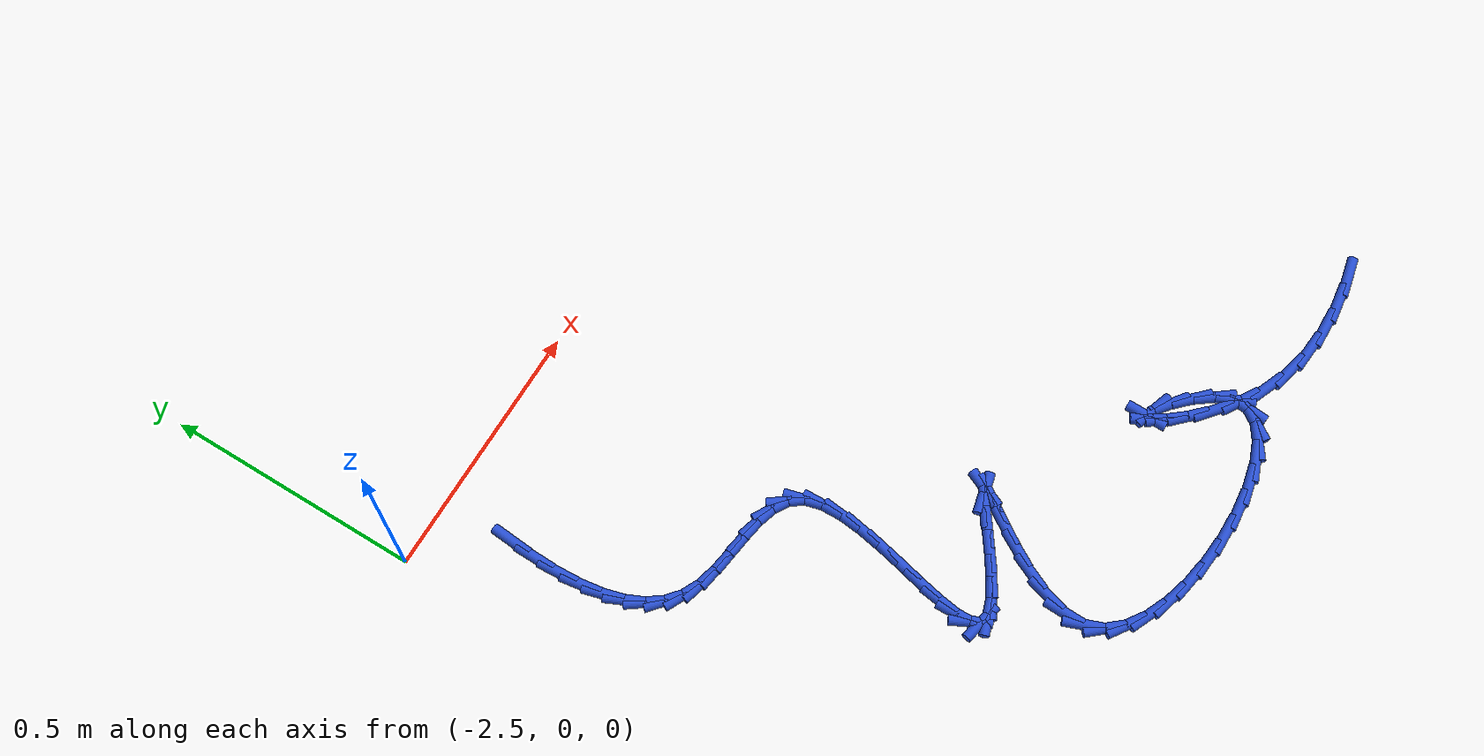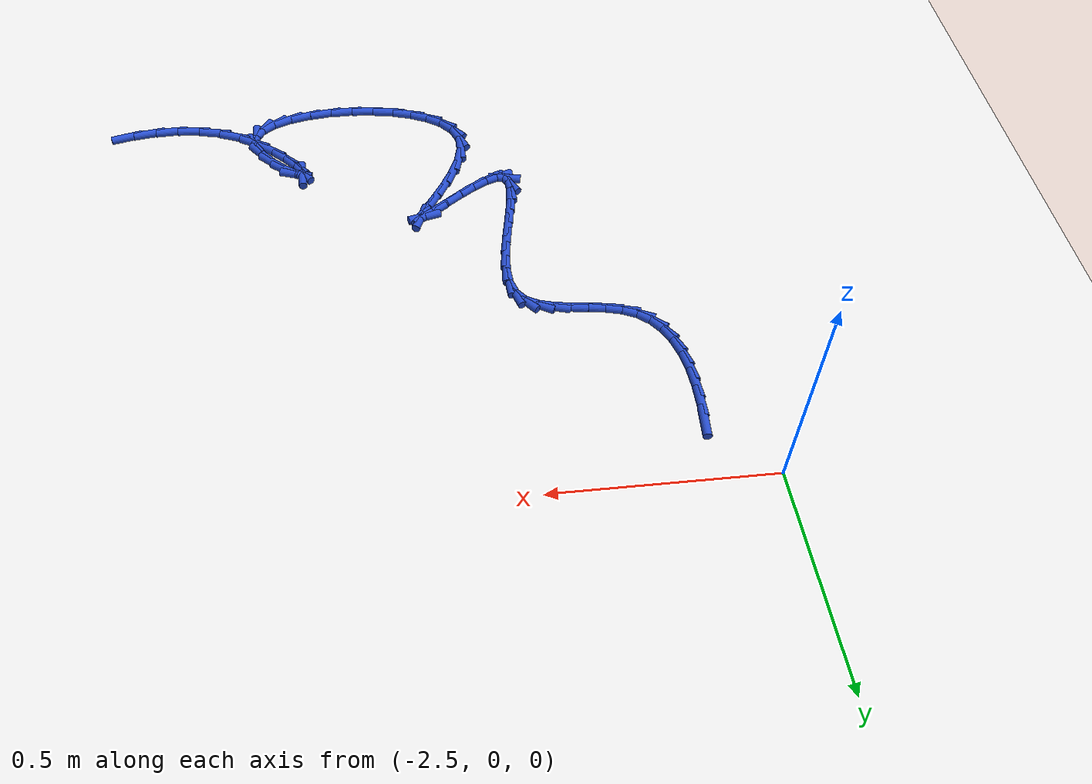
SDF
<sdf version="1.6">
 <world name="default">
  <model name="ground_plane">
   <static>1</static>
   <link name="link">
    <collision name="collision">
     <geometry><plane><normal>0 0 1</normal><size>100 100</size></plane></geometry>
     <surface><friction><ode><mu>100</mu><mu2>50</mu2></ode></friction></surface>
    </collision>
    <visual name="visual">
     <cast_shadows>0</cast_shadows>
     <geometry><plane><normal>0 0 1</normal><size>100 100</size></plane></geometry>
     <material>
      <script><uri>file://media/materials/scripts/gazebo.material</uri><name>Gazebo/WhiteGlow</name></script>
     </material>
    </visual>
   </link>
  </model>
  <model name="line">
   <link name="link_142">
    <pose>-2.367534722023718 -0.14222175634480727 0.01 0 1.57 1.4927262923827602</pose>
    <collision name="collision">
     <geometry><cylinder><radius>0.01</radius><length>0.08</length></cylinder></geometry>
    </collision>
    <visual name="visual">
     <material>
      <script><name>Gazebo/Blue</name><uri>file://media/materials/scripts/gazebo.material</uri></script>
     </material>
     <geometry><cylinder><radius>0.01</radius><length>0.08</length></cylinder></geometry>
    </visual>
   </link>
   <link name="link_143">
    <pose>-2.371664394581402 -0.19501126970334132 0.01 0 1.57 1.551394958650341</pose>
    <collision name="collision">
     <geometry><cylinder><radius>0.01</radius><length>0.08</length></cylinder></geometry>
    </collision>
    <visual name="visual">
     <material>
      <script><name>Gazebo/Blue</name><uri>file://media/materials/scripts/gazebo.material</uri></script>
     </material>
     <geometry><cylinder><radius>0.01</radius><length>0.08</length></cylinder></geometry>
    </visual>
   </link>
   <link name="link_144">
    <pose>-2.3726384613113045 -0.24521105470943155 0.01 0 1.57 -1.5160883344222762</pose>
    <collision name="collision">
     <geometry><cylinder><radius>0.01</radius><length>0.08</length></cylinder></geometry>
    </collision>
    <visual name="visual">
     <material>
      <script><name>Gazebo/Blue</name><uri>file://media/materials/scripts/gazebo.material</uri></script>
     </material>
     <geometry><cylinder><radius>0.01</radius><length>0.08</length></cylinder></geometry>
    </visual>
   </link>
   <link name="link_145">
    <pose>-2.370064036233079 -0.2922216662582472 0.01 0 1.57 -1.4211709859507027</pose>
    <collision name="collision">
     <geometry><cylinder><radius>0.01</radius><length>0.08</length></cylinder></geometry>
    </collision>
    <visual name="visual">
     <material>
      <script><name>Gazebo/Blue</name><uri>file://media/materials/scripts/gazebo.material</uri></script>
     </material>
     <geometry><cylinder><radius>0.01</radius><length>0.08</length></cylinder></geometry>
    </visual>
   </link>
   <link name="link_146">
    <pose>-2.3635482333663784 -0.33544365924495745 0.01 0 1.57 -1.2983472721769436</pose>
    <collision name="collision">
     <geometry><cylinder><radius>0.01</radius><length>0.08</length></cylinder></geometry>
    </collision>
    <visual name="visual">
     <material>
      <script><name>Gazebo/Blue</name><uri>file://media/materials/scripts/gazebo.material</uri></script>
     </material>
     <geometry><cylinder><radius>0.01</radius><length>0.08</length></cylinder></geometry>
    </visual>
   </link>
   <link name="link_147">
    <pose>-2.3526981667308577 -0.3742775885647318 0.01 0 1.57 -1.1394658630683658</pose>
    <collision name="collision">
     <geometry><cylinder><radius>0.01</radius><length>0.08</length></cylinder></geometry>
    </collision>
    <visual name="visual">
     <material>
      <script><name>Gazebo/Blue</name><uri>file://media/materials/scripts/gazebo.material</uri></script>
     </material>
     <geometry><cylinder><radius>0.01</radius><length>0.08</length></cylinder></geometry>
    </visual>
   </link>
   <link name="link_148">
    <pose>-2.337120950346171 -0.4081240091127395 0.01 0 1.57 -0.9386542671441666</pose>
    <collision name="collision">
     <geometry><cylinder><radius>0.01</radius><length>0.08</length></cylinder></geometry>
    </collision>
    <visual name="visual">
     <material>
      <script><name>Gazebo/Blue</name><uri>file://media/materials/scripts/gazebo.material</uri></script>
     </material>
     <geometry><cylinder><radius>0.01</radius><length>0.08</length></cylinder></geometry>
    </visual>
   </link>
   <link name="link_149">
    <pose>-2.3164236982319717 -0.43638347578415004 0.01 0 1.57 -0.6999228345357831</pose>
    <collision name="collision">
     <geometry><cylinder><radius>0.01</radius><length>0.08</length></cylinder></geometry>
    </collision>
    <visual name="visual">
     <material>
      <script><name>Gazebo/Blue</name><uri>file://media/materials/scripts/gazebo.material</uri></script>
     </material>
     <geometry><cylinder><radius>0.01</radius><length>0.08</length></cylinder></geometry>
    </visual>
   </link>
   <link name="link_150">
    <pose>-2.2902135244079136 -0.45845654347413267 0.01 0 1.57 -0.4469127269396857</pose>
    <collision name="collision">
     <geometry><cylinder><radius>0.01</radius><length>0.08</length></cylinder></geometry>
    </collision>
    <visual name="visual">
     <material>
      <script><name>Gazebo/Blue</name><uri>file://media/materials/scripts/gazebo.material</uri></script>
     </material>
     <geometry><cylinder><radius>0.01</radius><length>0.08</length></cylinder></geometry>
    </visual>
   </link>
   <link name="link_151">
    <pose>-2.2581632104356517 -0.4738167545006786 0.01 0 1.57 -0.2543051182490532</pose>
    <collision name="collision">
     <geometry><cylinder><radius>0.01</radius><length>0.08</length></cylinder></geometry>
    </collision>
    <visual name="visual">
     <material>
      <script><name>Gazebo/Blue</name><uri>file://media/materials/scripts/gazebo.material</uri></script>
     </material>
     <geometry><cylinder><radius>0.01</radius><length>0.08</length></cylinder></geometry>
    </visual>
   </link>
   <link name="link_152">
    <pose>-2.2212676379859473 -0.4834071241776403 0.01 0 1.57 -0.15376861565338065</pose>
    <collision name="collision">
     <geometry><cylinder><radius>0.01</radius><length>0.08</length></cylinder></geometry>
    </collision>
    <visual name="visual">
     <material>
      <script><name>Gazebo/Blue</name><uri>file://media/materials/scripts/gazebo.material</uri></script>
     </material>
     <geometry><cylinder><radius>0.01</radius><length>0.08</length></cylinder></geometry>
    </visual>
   </link>
   <link name="link_153">
    <pose>-2.181746959755795 -0.48953251831209127 0.01 0 1.57 -0.12513975057478421</pose>
    <collision name="collision">
     <geometry><cylinder><radius>0.01</radius><length>0.08</length></cylinder></geometry>
    </collision>
    <visual name="visual">
     <material>
      <script><name>Gazebo/Blue</name><uri>file://media/materials/scripts/gazebo.material</uri></script>
     </material>
     <geometry><cylinder><radius>0.01</radius><length>0.08</length></cylinder></geometry>
    </visual>
   </link>
   <link name="link_154">
    <pose>-2.1418675950410595 -0.49454922659132006 0.01 0 1.57 -0.16350079786242294</pose>
    <collision name="collision">
     <geometry><cylinder><radius>0.01</radius><length>0.08</length></cylinder></geometry>
    </collision>
    <visual name="visual">
     <material>
      <script><name>Gazebo/Blue</name><uri>file://media/materials/scripts/gazebo.material</uri></script>
     </material>
     <geometry><cylinder><radius>0.01</radius><length>0.08</length></cylinder></geometry>
    </visual>
   </link>
   <link name="link_155">
    <pose>-2.1038959631376044 -0.500813538702616 0.01 0 1.57 -0.28408332944326004</pose>
    <collision name="collision">
     <geometry><cylinder><radius>0.01</radius><length>0.08</length></cylinder></geometry>
    </collision>
    <visual name="visual">
     <material>
      <script><name>Gazebo/Blue</name><uri>file://media/materials/scripts/gazebo.material</uri></script>
     </material>
     <geometry><cylinder><radius>0.01</radius><length>0.08</length></cylinder></geometry>
    </visual>
   </link>
   <link name="link_156">
    <pose>-2.0700984833412934 -0.5106817443332683 0.01 0 1.57 -0.5245268479560343</pose>
    <collision name="collision">
     <geometry><cylinder><radius>0.01</radius><length>0.08</length></cylinder></geometry>
    </collision>
    <visual name="visual">
     <material>
      <script><name>Gazebo/Blue</name><uri>file://media/materials/scripts/gazebo.material</uri></script>
     </material>
     <geometry><cylinder><radius>0.01</radius><length>0.08</length></cylinder></geometry>
    </visual>
   </link>
   <link name="link_157">
    <pose>-2.042741574947991 -0.5265101331705657 0.01 0 1.57 -0.912512303107589</pose>
    <collision name="collision">
     <geometry><cylinder><radius>0.01</radius><length>0.08</length></cylinder></geometry>
    </collision>
    <visual name="visual">
     <material>
      <script><name>Gazebo/Blue</name><uri>file://media/materials/scripts/gazebo.material</uri></script>
     </material>
     <geometry><cylinder><radius>0.01</radius><length>0.08</length></cylinder></geometry>
    </visual>
   </link>
   <link name="link_158">
    <pose>-2.024079331292781 -0.5506415441420299 0.01 0 1.57 -1.304756937353869</pose>
    <collision name="collision">
     <geometry><cylinder><radius>0.01</radius><length>0.08</length></cylinder></geometry>
    </collision>
    <visual name="visual">
     <material>
      <script><name>Gazebo/Blue</name><uri>file://media/materials/scripts/gazebo.material</uri></script>
     </material>
     <geometry><cylinder><radius>0.01</radius><length>0.08</length></cylinder></geometry>
    </visual>
   </link>
   <link name="link_159">
    <pose>-2.015006722506168 -0.5839356669061756 0.01 0 1.57 -1.5421871909011355</pose>
    <collision name="collision">
     <geometry><cylinder><radius>0.01</radius><length>0.08</length></cylinder></geometry>
    </collision>
    <visual name="visual">
     <material>
      <script><name>Gazebo/Blue</name><uri>file://media/materials/scripts/gazebo.material</uri></script>
     </material>
     <geometry><cylinder><radius>0.01</radius><length>0.08</length></cylinder></geometry>
    </visual>
   </link>
   <link name="link_160">
    <pose>-2.013847433022036 -0.6244462641176255 0.01 0 1.57 1.465801101787795</pose>
    <collision name="collision">
     <geometry><cylinder><radius>0.01</radius><length>0.08</length></cylinder></geometry>
    </collision>
    <visual name="visual">
     <material>
      <script><name>Gazebo/Blue</name><uri>file://media/materials/scripts/gazebo.material</uri></script>
     </material>
     <geometry><cylinder><radius>0.01</radius><length>0.08</length></cylinder></geometry>
    </visual>
   </link>
   <link name="link_161">
    <pose>-2.0186390415393807 -0.6699148842696008 0.01 0 1.57 1.3904960794381915</pose>
    <collision name="collision">
     <geometry><cylinder><radius>0.01</radius><length>0.08</length></cylinder></geometry>
    </collision>
    <visual name="visual">
     <material>
      <script><name>Gazebo/Blue</name><uri>file://media/materials/scripts/gazebo.material</uri></script>
     </material>
     <geometry><cylinder><radius>0.01</radius><length>0.08</length></cylinder></geometry>
    </visual>
   </link>
   <link name="link_162">
    <pose>-2.0274191267571977 -0.7180830758553222 0.01 0 1.57 1.3520475664086893</pose>
    <collision name="collision">
     <geometry><cylinder><radius>0.01</radius><length>0.08</length></cylinder></geometry>
    </collision>
    <visual name="visual">
     <material>
      <script><name>Gazebo/Blue</name><uri>file://media/materials/scripts/gazebo.material</uri></script>
     </material>
     <geometry><cylinder><radius>0.01</radius><length>0.08</length></cylinder></geometry>
    </visual>
   </link>
   <link name="link_163">
    <pose>-2.038225267374481 -0.7666923873680103 0.01 0 1.57 1.342544641332965</pose>
    <collision name="collision">
     <geometry><cylinder><radius>0.01</radius><length>0.08</length></cylinder></geometry>
    </collision>
    <visual name="visual">
     <material>
      <script><name>Gazebo/Blue</name><uri>file://media/materials/scripts/gazebo.material</uri></script>
     </material>
     <geometry><cylinder><radius>0.01</radius><length>0.08</length></cylinder></geometry>
    </visual>
   </link>
   <link name="link_164">
    <pose>-2.049095042090226 -0.8134843673008862 0.01 0 1.57 1.3637909896577558</pose>
    <collision name="collision">
     <geometry><cylinder><radius>0.01</radius><length>0.08</length></cylinder></geometry>
    </collision>
    <visual name="visual">
     <material>
      <script><name>Gazebo/Blue</name><uri>file://media/materials/scripts/gazebo.material</uri></script>
     </material>
     <geometry><cylinder><radius>0.01</radius><length>0.08</length></cylinder></geometry>
    </visual>
   </link>
   <link name="link_165">
    <pose>-2.058066029603428 -0.8562005641471706 0.01 0 1.57 1.431260884879268</pose>
    <collision name="collision">
     <geometry><cylinder><radius>0.01</radius><length>0.08</length></cylinder></geometry>
    </collision>
    <visual name="visual">
     <material>
      <script><name>Gazebo/Blue</name><uri>file://media/materials/scripts/gazebo.material</uri></script>
     </material>
     <geometry><cylinder><radius>0.01</radius><length>0.08</length></cylinder></geometry>
    </visual>
   </link>
   <link name="link_166">
    <pose>-2.063175808613082 -0.8925825264000844 0.01 0 1.57 -1.5451139795421869</pose>
    <collision name="collision">
     <geometry><cylinder><radius>0.01</radius><length>0.08</length></cylinder></geometry>
    </collision>
    <visual name="visual">
     <material>
      <script><name>Gazebo/Blue</name><uri>file://media/materials/scripts/gazebo.material</uri></script>
     </material>
     <geometry><cylinder><radius>0.01</radius><length>0.08</length></cylinder></geometry>
    </visual>
   </link>
   <link name="link_167">
    <pose>-2.0624619578181833 -0.9203718025528488 0.01 0 1.57 -1.1056935320502097</pose>
    <collision name="collision">
     <geometry><cylinder><radius>0.01</radius><length>0.08</length></cylinder></geometry>
    </collision>
    <visual name="visual">
     <material>
      <script><name>Gazebo/Blue</name><uri>file://media/materials/scripts/gazebo.material</uri></script>
     </material>
     <geometry><cylinder><radius>0.01</radius><length>0.08</length></cylinder></geometry>
    </visual>
   </link>
   <link name="link_168">
    <pose>-2.0539620559177276 -0.9373099410986839 0.01 0 1.57 -0.2068946007845611</pose>
    <collision name="collision">
     <geometry><cylinder><radius>0.01</radius><length>0.08</length></cylinder></geometry>
    </collision>
    <visual name="visual">
     <material>
      <script><name>Gazebo/Blue</name><uri>file://media/materials/scripts/gazebo.material</uri></script>
     </material>
     <geometry><cylinder><radius>0.01</radius><length>0.08</length></cylinder></geometry>
    </visual>
   </link>
   <link name="link_169">
    <pose>-2.035714995976048 -0.9411399643982902 0.01 0 1.57 0.3362952146512855</pose>
    <collision name="collision">
     <geometry><cylinder><radius>0.01</radius><length>0.08</length></cylinder></geometry>
    </collision>
    <visual name="visual">
     <material>
      <script><name>Gazebo/Blue</name><uri>file://media/materials/scripts/gazebo.material</uri></script>
     </material>
     <geometry><cylinder><radius>0.01</radius><length>0.08</length></cylinder></geometry>
    </visual>
   </link>
   <link name="link_170">
    <pose>-2.0071376151215725 -0.9311500564846302 0.01 0 1.57 0.5140883160468618</pose>
    <collision name="collision">
     <geometry><cylinder><radius>0.01</radius><length>0.08</length></cylinder></geometry>
    </collision>
    <visual name="visual">
     <material>
      <script><name>Gazebo/Blue</name><uri>file://media/materials/scripts/gazebo.material</uri></script>
     </material>
     <geometry><cylinder><radius>0.01</radius><length>0.08</length></cylinder></geometry>
    </visual>
   </link>
   <link name="link_171">
    <pose>-1.971634506163452 -0.911100083076989 0.01 0 1.57 0.5881455450969074</pose>
    <collision name="collision">
     <geometry><cylinder><radius>0.01</radius><length>0.08</length></cylinder></geometry>
    </collision>
    <visual name="visual">
     <material>
      <script><name>Gazebo/Blue</name><uri>file://media/materials/scripts/gazebo.material</uri></script>
     </material>
     <geometry><cylinder><radius>0.01</radius><length>0.08</length></cylinder></geometry>
    </visual>
   </link>
   <link name="link_172">
    <pose>-1.933327460318377 -0.8855541424608474 0.01 0 1.57 0.6212683855946957</pose>
    <collision name="collision">
     <geometry><cylinder><radius>0.01</radius><length>0.08</length></cylinder></geometry>
    </collision>
    <visual name="visual">
     <material>
      <script><name>Gazebo/Blue</name><uri>file://media/materials/scripts/gazebo.material</uri></script>
     </material>
     <geometry><cylinder><radius>0.01</radius><length>0.08</length></cylinder></geometry>
    </visual>
   </link>
   <link name="link_173">
    <pose>-1.8963382688030381 -0.8590763329216857 0.01 0 1.57 0.6267295361126305</pose>
    <collision name="collision">
     <geometry><cylinder><radius>0.01</radius><length>0.08</length></cylinder></geometry>
    </collision>
    <visual name="visual">
     <material>
      <script><name>Gazebo/Blue</name><uri>file://media/materials/scripts/gazebo.material</uri></script>
     </material>
     <geometry><cylinder><radius>0.01</radius><length>0.08</length></cylinder></geometry>
    </visual>
   </link>
   <link name="link_174">
    <pose>-1.8647887228341264 -0.836230752744984 0.01 0 1.57 0.5877038424918989</pose>
    <collision name="collision">
     <geometry><cylinder><radius>0.01</radius><length>0.08</length></cylinder></geometry>
    </collision>
    <visual name="visual">
     <material>
      <script><name>Gazebo/Blue</name><uri>file://media/materials/scripts/gazebo.material</uri></script>
     </material>
     <geometry><cylinder><radius>0.01</radius><length>0.08</length></cylinder></geometry>
    </visual>
   </link>
   <link name="link_175">
    <pose>-1.842800613628333 -0.8215815002162227 0.01 0 1.57 0.2358585604706953</pose>
    <collision name="collision">
     <geometry><cylinder><radius>0.01</radius><length>0.08</length></cylinder></geometry>
    </collision>
    <visual name="visual">
     <material>
      <script><name>Gazebo/Blue</name><uri>file://media/materials/scripts/gazebo.material</uri></script>
     </material>
     <geometry><cylinder><radius>0.01</radius><length>0.08</length></cylinder></geometry>
    </visual>
   </link>
   <link name="link_176">
    <pose>-1.8343338172458328 -0.8195466609281843 0.01 0 1.57 1.1439854885659801</pose>
    <collision name="collision">
     <geometry><cylinder><radius>0.01</radius><length>0.08</length></cylinder></geometry>
    </collision>
    <visual name="visual">
     <material>
      <script><name>Gazebo/Blue</name><uri>file://media/materials/scripts/gazebo.material</uri></script>
     </material>
     <geometry><cylinder><radius>0.01</radius><length>0.08</length></cylinder></geometry>
    </visual>
   </link>
   <link name="link_177">
    <pose>-1.8396289973896525 -0.8311903897937349 0.01 0 1.57 0.9760718624675299</pose>
    <collision name="collision">
     <geometry><cylinder><radius>0.01</radius><length>0.08</length></cylinder></geometry>
    </collision>
    <visual name="visual">
     <material>
      <script><name>Gazebo/Blue</name><uri>file://media/materials/scripts/gazebo.material</uri></script>
     </material>
     <geometry><cylinder><radius>0.01</radius><length>0.08</length></cylinder></geometry>
    </visual>
   </link>
   <link name="link_178">
    <pose>-1.855210290224737 -0.8542253321759377 0.01 0 1.57 0.9635427401177101</pose>
    <collision name="collision">
     <geometry><cylinder><radius>0.01</radius><length>0.08</length></cylinder></geometry>
    </collision>
    <visual name="visual">
     <material>
      <script><name>Gazebo/Blue</name><uri>file://media/materials/scripts/gazebo.material</uri></script>
     </material>
     <geometry><cylinder><radius>0.01</radius><length>0.08</length></cylinder></geometry>
    </visual>
   </link>
   <link name="link_179">
    <pose>-1.8774404537234142 -0.8862186049712573 0.01 0 1.57 0.9906956656434615</pose>
    <collision name="collision">
     <geometry><cylinder><radius>0.01</radius><length>0.08</length></cylinder></geometry>
    </collision>
    <visual name="visual">
     <material>
      <script><name>Gazebo/Blue</name><uri>file://media/materials/scripts/gazebo.material</uri></script>
     </material>
     <geometry><cylinder><radius>0.01</radius><length>0.08</length></cylinder></geometry>
    </visual>
   </link>
   <link name="link_180">
    <pose>-1.9026822458580122 -0.9247373250761587 0.01 0 1.57 1.0469416308467774</pose>
    <collision name="collision">
     <geometry><cylinder><radius>0.01</radius><length>0.08</length></cylinder></geometry>
    </collision>
    <visual name="visual">
     <material>
      <script><name>Gazebo/Blue</name><uri>file://media/materials/scripts/gazebo.material</uri></script>
     </material>
     <geometry><cylinder><radius>0.01</radius><length>0.08</length></cylinder></geometry>
    </visual>
   </link>
   <link name="link_181">
    <pose>-1.9272984246008578 -0.9673486093871065 0.01 0 1.57 1.1398686625085255</pose>
    <collision name="collision">
     <geometry><cylinder><radius>0.01</radius><length>0.08</length></cylinder></geometry>
    </collision>
    <visual name="visual">
     <material>
      <script><name>Gazebo/Blue</name><uri>file://media/materials/scripts/gazebo.material</uri></script>
     </material>
     <geometry><cylinder><radius>0.01</radius><length>0.08</length></cylinder></geometry>
    </visual>
   </link>
   <link name="link_182">
    <pose>-1.9476517479242796 -1.0116195748005659 0.01 0 1.57 1.2919591473286784</pose>
    <collision name="collision">
     <geometry><cylinder><radius>0.01</radius><length>0.08</length></cylinder></geometry>
    </collision>
    <visual name="visual">
     <material>
      <script><name>Gazebo/Blue</name><uri>file://media/materials/scripts/gazebo.material</uri></script>
     </material>
     <geometry><cylinder><radius>0.01</radius><length>0.08</length></cylinder></geometry>
    </visual>
   </link>
   <link name="link_183">
    <pose>-1.9601049738006053 -1.0551173382130015 0.01 0 1.57 1.5480656570225104</pose>
    <collision name="collision">
     <geometry><cylinder><radius>0.01</radius><length>0.08</length></cylinder></geometry>
    </collision>
    <visual name="visual">
     <material>
      <script><name>Gazebo/Blue</name><uri>file://media/materials/scripts/gazebo.material</uri></script>
     </material>
     <geometry><cylinder><radius>0.01</radius><length>0.08</length></cylinder></geometry>
    </visual>
   </link>
   <link name="link_184">
    <pose>-1.9610209896610031 -1.0954090718378189 0.01 0 1.57 -1.2134356595978673</pose>
    <collision name="collision">
     <geometry><cylinder><radius>0.01</radius><length>0.08</length></cylinder></geometry>
    </collision>
    <visual name="visual">
     <material>
      <script><name>Gazebo/Blue</name><uri>file://media/materials/scripts/gazebo.material</uri></script>
     </material>
     <geometry><cylinder><radius>0.01</radius><length>0.08</length></cylinder></geometry>
    </visual>
   </link>
   <link name="link_185">
    <pose>-1.9479003505185049 -1.1305480660319904 0.01 0 1.57 -0.8566854456638373</pose>
    <collision name="collision">
     <geometry><cylinder><radius>0.01</radius><length>0.08</length></cylinder></geometry>
    </collision>
    <visual name="visual">
     <material>
      <script><name>Gazebo/Blue</name><uri>file://media/materials/scripts/gazebo.material</uri></script>
     </material>
     <geometry><cylinder><radius>0.01</radius><length>0.08</length></cylinder></geometry>
    </visual>
   </link>
   <link name="link_186">
    <pose>-1.922151271971977 -1.1602573297415928 0.01 0 1.57 -0.5932237876398642</pose>
    <collision name="collision">
     <geometry><cylinder><radius>0.01</radius><length>0.08</length></cylinder></geometry>
    </collision>
    <visual name="visual">
     <material>
      <script><name>Gazebo/Blue</name><uri>file://media/materials/scripts/gazebo.material</uri></script>
     </material>
     <geometry><cylinder><radius>0.01</radius><length>0.08</length></cylinder></geometry>
    </visual>
   </link>
   <link name="link_187">
    <pose>-1.8860203025705142 -1.1846180862663065 0.01 0 1.57 -0.4072215817042992</pose>
    <collision name="collision">
     <geometry><cylinder><radius>0.01</radius><length>0.08</length></cylinder></geometry>
    </collision>
    <visual name="visual">
     <material>
      <script><name>Gazebo/Blue</name><uri>file://media/materials/scripts/gazebo.material</uri></script>
     </material>
     <geometry><cylinder><radius>0.01</radius><length>0.08</length></cylinder></geometry>
    </visual>
   </link>
   <link name="link_188">
    <pose>-1.8417539908632057 -1.2037115589058112 0.01 0 1.57 -0.270492158215608</pose>
    <collision name="collision">
     <geometry><cylinder><radius>0.01</radius><length>0.08</length></cylinder></geometry>
    </collision>
    <visual name="visual">
     <material>
      <script><name>Gazebo/Blue</name><uri>file://media/materials/scripts/gazebo.material</uri></script>
     </material>
     <geometry><cylinder><radius>0.01</radius><length>0.08</length></cylinder></geometry>
    </visual>
   </link>
   <link name="link_189">
    <pose>-1.7915988853991458 -1.2176189709597869 0.01 0 1.57 -0.162187463181037</pose>
    <collision name="collision">
     <geometry><cylinder><radius>0.01</radius><length>0.08</length></cylinder></geometry>
    </collision>
    <visual name="visual">
     <material>
      <script><name>Gazebo/Blue</name><uri>file://media/materials/scripts/gazebo.material</uri></script>
     </material>
     <geometry><cylinder><radius>0.01</radius><length>0.08</length></cylinder></geometry>
    </visual>
   </link>
   <link name="link_190">
    <pose>-1.7378015347274254 -1.2264215457279137 0.01 0 1.57 -0.06836136832205573</pose>
    <collision name="collision">
     <geometry><cylinder><radius>0.01</radius><length>0.08</length></cylinder></geometry>
    </collision>
    <visual name="visual">
     <material>
      <script><name>Gazebo/Blue</name><uri>file://media/materials/scripts/gazebo.material</uri></script>
     </material>
     <geometry><cylinder><radius>0.01</radius><length>0.08</length></cylinder></geometry>
    </visual>
   </link>
   <link name="link_191">
    <pose>-1.682608487397137 -1.230200506509872 0.01 0 1.57 0.021406058177551823</pose>
    <collision name="collision">
     <geometry><cylinder><radius>0.01</radius><length>0.08</length></cylinder></geometry>
    </collision>
    <visual name="visual">
     <material>
      <script><name>Gazebo/Blue</name><uri>file://media/materials/scripts/gazebo.material</uri></script>
     </material>
     <geometry><cylinder><radius>0.01</radius><length>0.08</length></cylinder></geometry>
    </visual>
   </link>
   <link name="link_192">
    <pose>-1.6282662919573725 -1.2290370766053413 0.01 0 1.57 0.11702786234181768</pose>
    <collision name="collision">
     <geometry><cylinder><radius>0.01</radius><length>0.08</length></cylinder></geometry>
    </collision>
    <visual name="visual">
     <material>
      <script><name>Gazebo/Blue</name><uri>file://media/materials/scripts/gazebo.material</uri></script>
     </material>
     <geometry><cylinder><radius>0.01</radius><length>0.08</length></cylinder></geometry>
    </visual>
   </link>
   <link name="link_193">
    <pose>-1.5770214969572243 -1.2230124793140023 0.01 0 1.57 0.23118030468283376</pose>
    <collision name="collision">
     <geometry><cylinder><radius>0.01</radius><length>0.08</length></cylinder></geometry>
    </collision>
    <visual name="visual">
     <material>
      <script><name>Gazebo/Blue</name><uri>file://media/materials/scripts/gazebo.material</uri></script>
     </material>
     <geometry><cylinder><radius>0.01</radius><length>0.08</length></cylinder></geometry>
    </visual>
   </link>
   <link name="link_194">
    <pose>-1.5311206509457849 -1.212207937935535 0.01 0 1.57 0.3845305324991904</pose>
    <collision name="collision">
     <geometry><cylinder><radius>0.01</radius><length>0.08</length></cylinder></geometry>
    </collision>
    <visual name="visual">
     <material>
      <script><name>Gazebo/Blue</name><uri>file://media/materials/scripts/gazebo.material</uri></script>
     </material>
     <geometry><cylinder><radius>0.01</radius><length>0.08</length></cylinder></geometry>
    </visual>
   </link>
   <link name="link_195">
    <pose>-1.492810302472146 -1.1967046757696194 0.01 0 1.57 0.6151774769110303</pose>
    <collision name="collision">
     <geometry><cylinder><radius>0.01</radius><length>0.08</length></cylinder></geometry>
    </collision>
    <visual name="visual">
     <material>
      <script><name>Gazebo/Blue</name><uri>file://media/materials/scripts/gazebo.material</uri></script>
     </material>
     <geometry><cylinder><radius>0.01</radius><length>0.08</length></cylinder></geometry>
    </visual>
   </link>
   <link name="link_196">
    <pose>-1.4643370000853988 -1.1765839161159348 0.01 0 1.57 0.9841515091037739</pose>
    <collision name="collision">
     <geometry><cylinder><radius>0.01</radius><length>0.08</length></cylinder></geometry>
    </collision>
    <visual name="visual">
     <material>
      <script><name>Gazebo/Blue</name><uri>file://media/materials/scripts/gazebo.material</uri></script>
     </material>
     <geometry><cylinder><radius>0.01</radius><length>0.08</length></cylinder></geometry>
    </visual>
   </link>
   <link name="link_197">
    <pose>-1.447947292334637 -1.1519268822741624 0.01 0 1.57 1.5001679666068761</pose>
    <collision name="collision">
     <geometry><cylinder><radius>0.01</radius><length>0.08</length></cylinder></geometry>
    </collision>
    <visual name="visual">
     <material>
      <script><name>Gazebo/Blue</name><uri>file://media/materials/scripts/gazebo.material</uri></script>
     </material>
     <geometry><cylinder><radius>0.01</radius><length>0.08</length></cylinder></geometry>
    </visual>
   </link>
   <link name="link_198">
    <pose>-1.4458877277689526 -1.1228147975439817 0.01 0 1.57 -1.1722069931587018</pose>
    <collision name="collision">
     <geometry><cylinder><radius>0.01</radius><length>0.08</length></cylinder></geometry>
    </collision>
    <visual name="visual">
     <material>
      <script><name>Gazebo/Blue</name><uri>file://media/materials/scripts/gazebo.material</uri></script>
     </material>
     <geometry><cylinder><radius>0.01</radius><length>0.08</length></cylinder></geometry>
    </visual>
   </link>
   <link name="link_199">
    <pose>-1.4598760186103663 -1.0895988190987438 0.01 0 1.57 -0.9194295971472782</pose>
    <collision name="collision">
     <geometry><cylinder><radius>0.01</radius><length>0.08</length></cylinder></geometry>
    </collision>
    <visual name="visual">
     <material>
      <script><name>Gazebo/Blue</name><uri>file://media/materials/scripts/gazebo.material</uri></script>
     </material>
     <geometry><cylinder><radius>0.01</radius><length>0.08</length></cylinder></geometry>
    </visual>
   </link>
   <link name="link_200">
    <pose>-1.4857852828541083 -1.055613359759943 0.01 0 1.57 -0.7769321827403551</pose>
    <collision name="collision">
     <geometry><cylinder><radius>0.01</radius><length>0.08</length></cylinder></geometry>
    </collision>
    <visual name="visual">
     <material>
      <script><name>Gazebo/Blue</name><uri>file://media/materials/scripts/gazebo.material</uri></script>
     </material>
     <geometry><cylinder><radius>0.01</radius><length>0.08</length></cylinder></geometry>
    </visual>
   </link>
   <link name="link_201">
    <pose>-1.515857050849167 -1.0260465032690673 0.01 0 1.57 -0.646314514964658</pose>
    <collision name="collision">
     <geometry><cylinder><radius>0.01</radius><length>0.08</length></cylinder></geometry>
    </collision>
    <visual name="visual">
     <material>
      <script><name>Gazebo/Blue</name><uri>file://media/materials/scripts/gazebo.material</uri></script>
     </material>
     <geometry><cylinder><radius>0.01</radius><length>0.08</length></cylinder></geometry>
    </visual>
   </link>
   <link name="link_202">
    <pose>-1.542278280606049 -1.0061141887208913 0.01 0 1.57 -0.3312779596118483</pose>
    <collision name="collision">
     <geometry><cylinder><radius>0.01</radius><length>0.08</length></cylinder></geometry>
    </collision>
    <visual name="visual">
     <material>
      <script><name>Gazebo/Blue</name><uri>file://media/materials/scripts/gazebo.material</uri></script>
     </material>
     <geometry><cylinder><radius>0.01</radius><length>0.08</length></cylinder></geometry>
    </visual>
   </link>
   <link name="link_203">
    <pose>-1.5573369106891712 -1.000934721890441 0.01 0 1.57 1.570074159566685</pose>
    <collision name="collision">
     <geometry><cylinder><radius>0.01</radius><length>0.08</length></cylinder></geometry>
    </collision>
    <visual name="visual">
     <material>
      <script><name>Gazebo/Blue</name><uri>file://media/materials/scripts/gazebo.material</uri></script>
     </material>
     <geometry><cylinder><radius>0.01</radius><length>0.08</length></cylinder></geometry>
    </visual>
   </link>
   <link name="link_204">
    <pose>-1.5573447109881355 -1.0117359564294255 0.01 0 1.57 -1.039856298189714</pose>
    <collision name="collision">
     <geometry><cylinder><radius>0.01</radius><length>0.08</length></cylinder></geometry>
    </collision>
    <visual name="visual">
     <material>
      <script><name>Gazebo/Blue</name><uri>file://media/materials/scripts/gazebo.material</uri></script>
     </material>
     <geometry><cylinder><radius>0.01</radius><length>0.08</length></cylinder></geometry>
    </visual>
   </link>
   <link name="link_205">
    <pose>-1.54389808848164 -1.0346362804273195 0.01 0 1.57 -0.8895684061264523</pose>
    <collision name="collision">
     <geometry><cylinder><radius>0.01</radius><length>0.08</length></cylinder></geometry>
    </collision>
    <visual name="visual">
     <material>
      <script><name>Gazebo/Blue</name><uri>file://media/materials/scripts/gazebo.material</uri></script>
     </material>
     <geometry><cylinder><radius>0.01</radius><length>0.08</length></cylinder></geometry>
    </visual>
   </link>
   <link name="link_206">
    <pose>-1.5189524791650635 -1.0654069538045994 0.01 0 1.57 -0.7842824041462538</pose>
    <collision name="collision">
     <geometry><cylinder><radius>0.01</radius><length>0.08</length></cylinder></geometry>
    </collision>
    <visual name="visual">
     <material>
      <script><name>Gazebo/Blue</name><uri>file://media/materials/scripts/gazebo.material</uri></script>
     </material>
     <geometry><cylinder><radius>0.01</radius><length>0.08</length></cylinder></geometry>
    </visual>
   </link>
   <link name="link_207">
    <pose>-1.4844633190337853 -1.0998192364817414 0.01 0 1.57 -0.6771033631634111</pose>
    <collision name="collision">
     <geometry><cylinder><radius>0.01</radius><length>0.08</length></cylinder></geometry>
    </collision>
    <visual name="visual">
     <material>
      <script><name>Gazebo/Blue</name><uri>file://media/materials/scripts/gazebo.material</uri></script>
     </material>
     <geometry><cylinder><radius>0.01</radius><length>0.08</length></cylinder></geometry>
    </visual>
   </link>
   <link name="link_208">
    <pose>-1.4423860440831828 -1.1336443883792218 0.01 0 1.57 -0.5463060282760673</pose>
    <collision name="collision">
     <geometry><cylinder><radius>0.01</radius><length>0.08</length></cylinder></geometry>
    </collision>
    <visual name="visual">
     <material>
      <script><name>Gazebo/Blue</name><uri>file://media/materials/scripts/gazebo.material</uri></script>
     </material>
     <geometry><cylinder><radius>0.01</radius><length>0.08</length></cylinder></geometry>
    </visual>
   </link>
   <link name="link_209">
    <pose>-1.3946760903086348 -1.1626536694175167 0.01 0 1.57 -0.38008745503710595</pose>
    <collision name="collision">
     <geometry><cylinder><radius>0.01</radius><length>0.08</length></cylinder></geometry>
    </collision>
    <visual name="visual">
     <material>
      <script><name>Gazebo/Blue</name><uri>file://media/materials/scripts/gazebo.material</uri></script>
     </material>
     <geometry><cylinder><radius>0.01</radius><length>0.08</length></cylinder></geometry>
    </visual>
   </link>
   <link name="link_210">
    <pose>-1.343173418427256 -1.1832297146585893 0.01 0 1.57 -0.21738609396271089</pose>
    <collision name="collision">
     <geometry><cylinder><radius>0.01</radius><length>0.08</length></cylinder></geometry>
    </collision>
    <visual name="visual">
     <material>
      <script><name>Gazebo/Blue</name><uri>file://media/materials/scripts/gazebo.material</uri></script>
     </material>
     <geometry><cylinder><radius>0.01</radius><length>0.08</length></cylinder></geometry>
    </visual>
   </link>
   <link name="link_211">
    <pose>-1.289071183735381 -1.195179621625889 0.01 0 1.57 -0.07740101249466716</pose>
    <collision name="collision">
     <geometry><cylinder><radius>0.01</radius><length>0.08</length></cylinder></geometry>
    </collision>
    <visual name="visual">
     <material>
      <script><name>Gazebo/Blue</name><uri>file://media/materials/scripts/gazebo.material</uri></script>
     </material>
     <geometry><cylinder><radius>0.01</radius><length>0.08</length></cylinder></geometry>
    </visual>
   </link>
   <link name="link_212">
    <pose>-1.23333747177056 -1.1995021026862507 0.01 0 1.57 0.04084846516977128</pose>
    <collision name="collision">
     <geometry><cylinder><radius>0.01</radius><length>0.08</length></cylinder></geometry>
    </collision>
    <visual name="visual">
     <material>
      <script><name>Gazebo/Blue</name><uri>file://media/materials/scripts/gazebo.material</uri></script>
     </material>
     <geometry><cylinder><radius>0.01</radius><length>0.08</length></cylinder></geometry>
    </visual>
   </link>
   <link name="link_213">
    <pose>-1.1769401403111692 -1.1971970760602393 0.01 0 1.57 0.1404871635942173</pose>
    <collision name="collision">
     <geometry><cylinder><radius>0.01</radius><length>0.08</length></cylinder></geometry>
    </collision>
    <visual name="visual">
     <material>
      <script><name>Gazebo/Blue</name><uri>file://media/materials/scripts/gazebo.material</uri></script>
     </material>
     <geometry><cylinder><radius>0.01</radius><length>0.08</length></cylinder></geometry>
    </visual>
   </link>
   <link name="link_214">
    <pose>-1.1208470471355874 -1.189264459968421 0.01 0 1.57 0.22522724949726564</pose>
    <collision name="collision">
     <geometry><cylinder><radius>0.01</radius><length>0.08</length></cylinder></geometry>
    </collision>
    <visual name="visual">
     <material>
      <script><name>Gazebo/Blue</name><uri>file://media/materials/scripts/gazebo.material</uri></script>
     </material>
     <geometry><cylinder><radius>0.01</radius><length>0.08</length></cylinder></geometry>
    </visual>
   </link>
  </model>
 </world>
</sdf>
